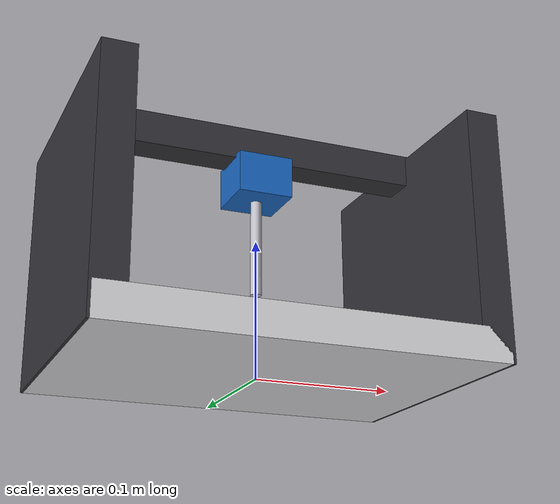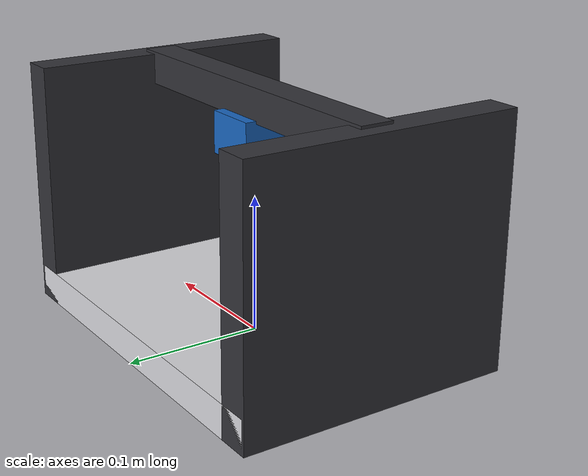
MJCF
<?xml version="1.0" encoding="utf-8"?>
<mujoco model="real_lab_asu_liquid_handler">
  <compiler angle="radian" autolimits="true"/>
  <default>
    <default class="body"><geom contype="1" conaffinity="1"/></default>
  </default>
  <worldbody>
    <body name="base">
      <geom type="box" size="0.14 0.1 0.012" pos="0 0 0.012" rgba="0.85 0.85 0.87 1" class="body"/>
      <geom type="box" size="0.012 0.1 0.09" pos="-0.13 0 0.09" rgba="0.2 0.2 0.22 1" class="body"/>
      <geom type="box" size="0.012 0.1 0.09" pos="0.13 0 0.09" rgba="0.2 0.2 0.22 1" class="body"/>
      <geom type="box" size="0.13 0.012 0.012" pos="0 0 0.17" rgba="0.2 0.2 0.22 1" class="body"/>
      <body name="pipette_head" pos="0.0 0.0 0.16">
        <joint name="pipette_head_joint" type="slide" axis="1 0 0" range="-0.1 0.1" damping="1.0" frictionloss="0.4"/>
  <geom type="box" size="0.02 0.02 0.015" pos="0 0 -0.015" rgba="0.1 0.4 0.75 1" class="body"/>
  <geom type="cylinder" size="0.004 0.04" pos="0 0 -0.06" rgba="0.75 0.75 0.78 1" class="body"/>
      </body>
    </body>
  </worldbody>
</mujoco>
